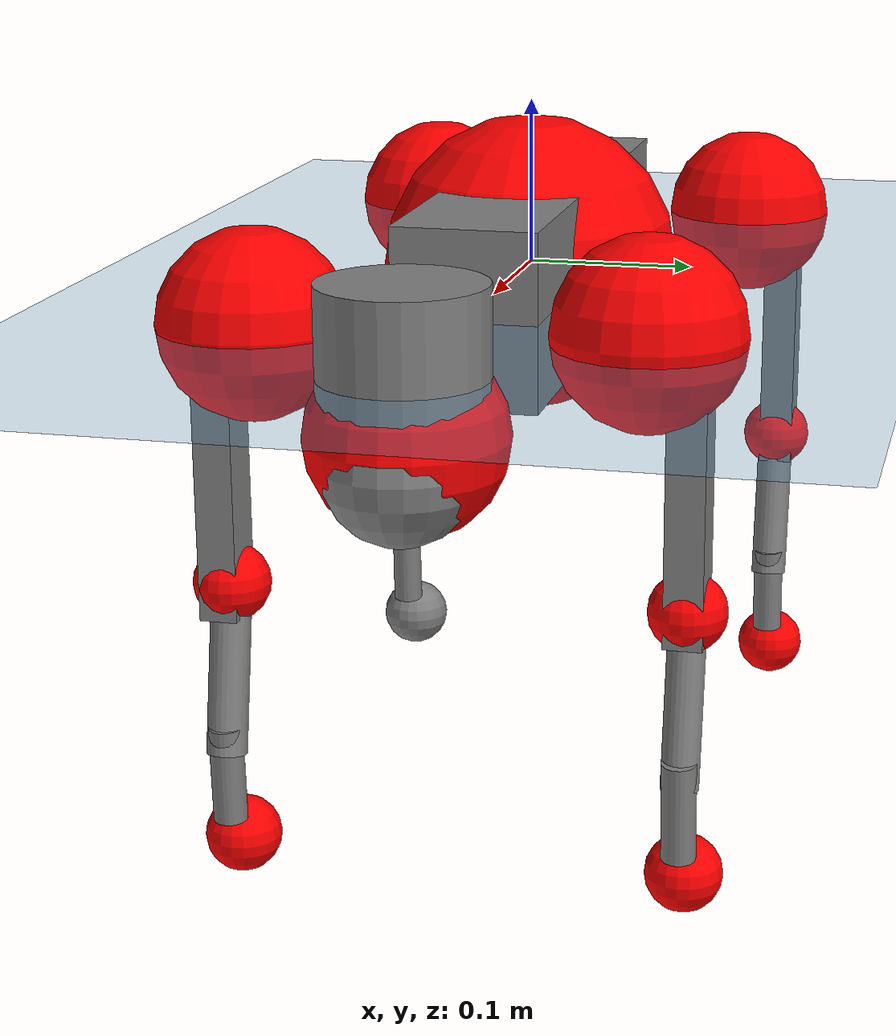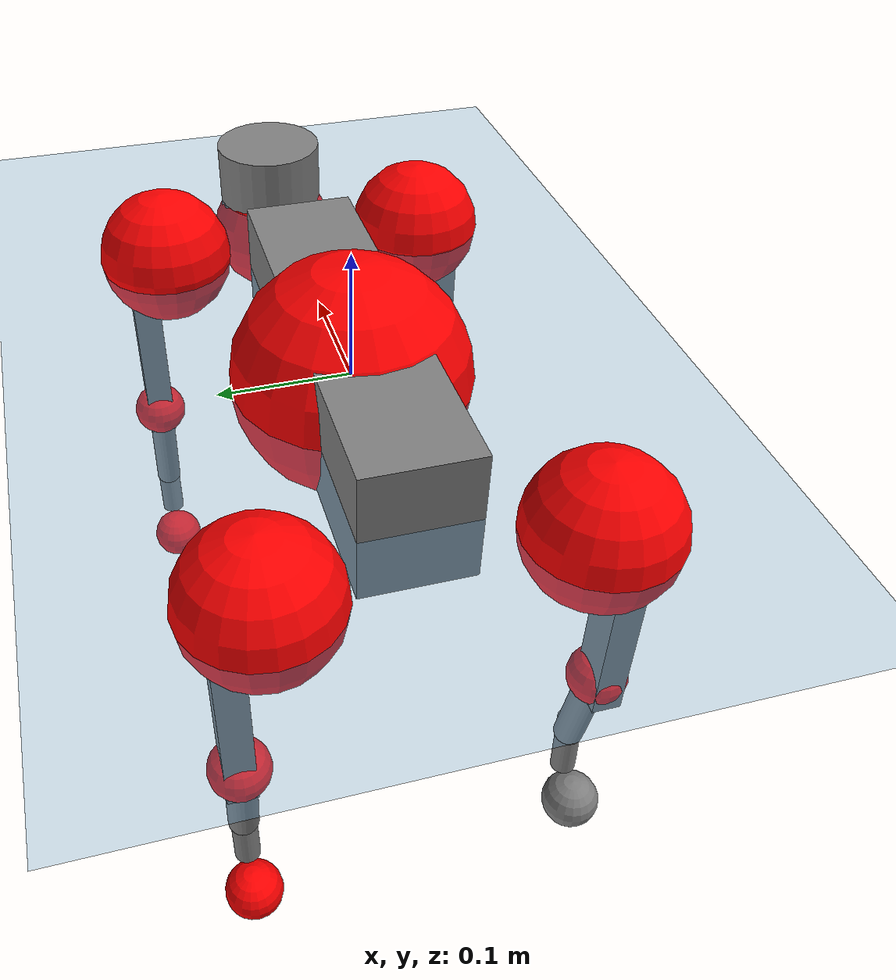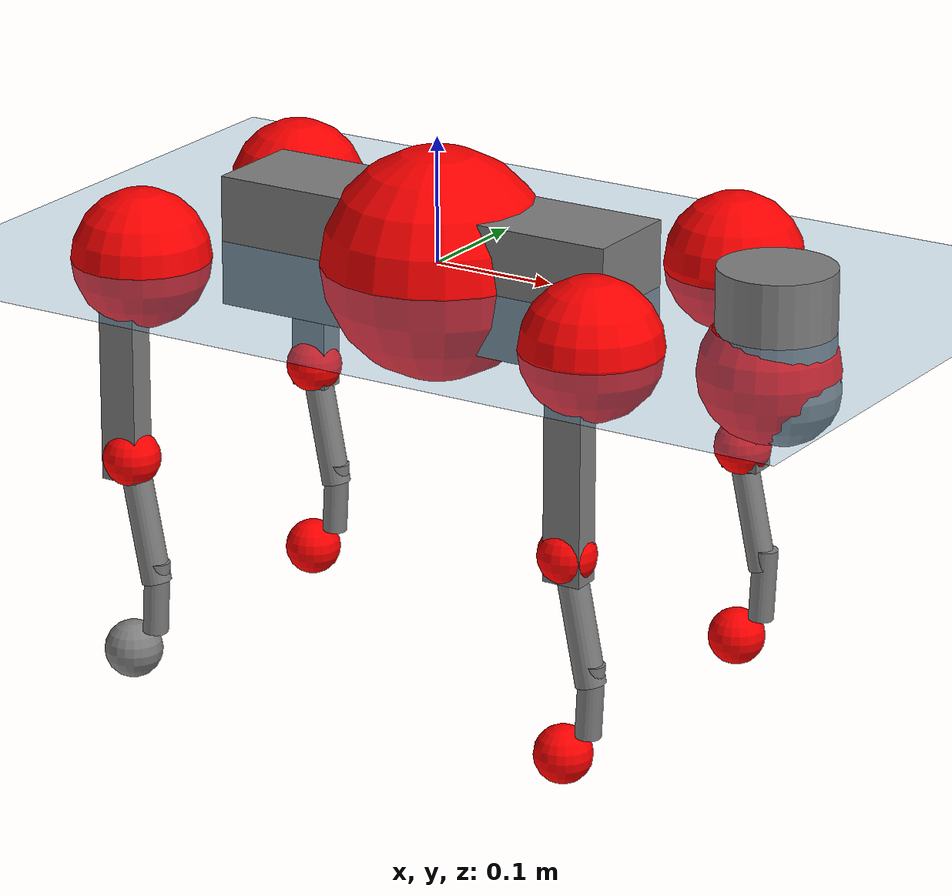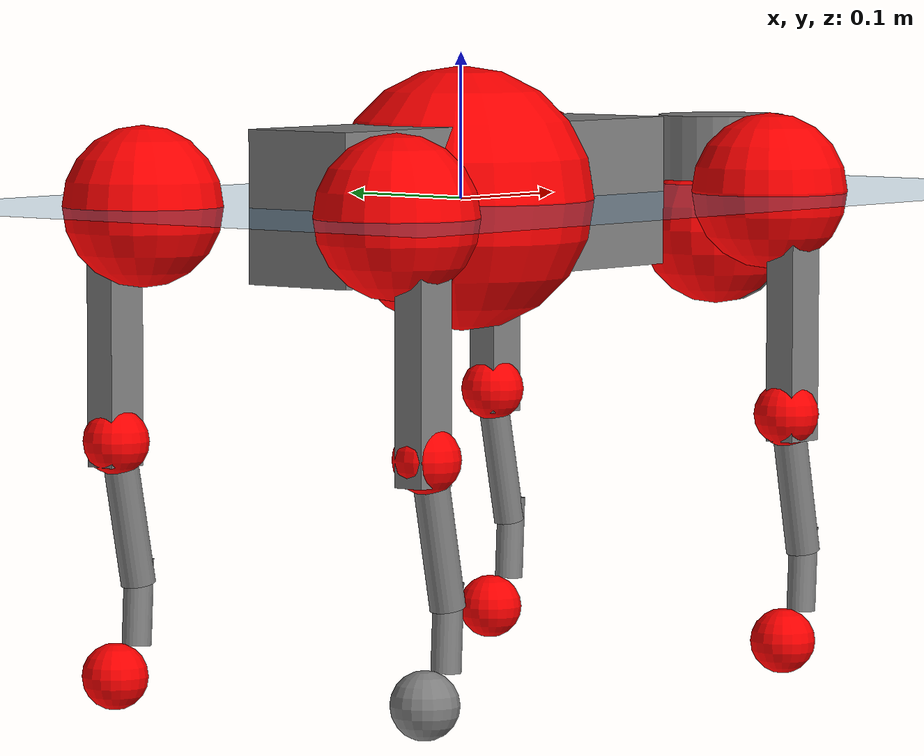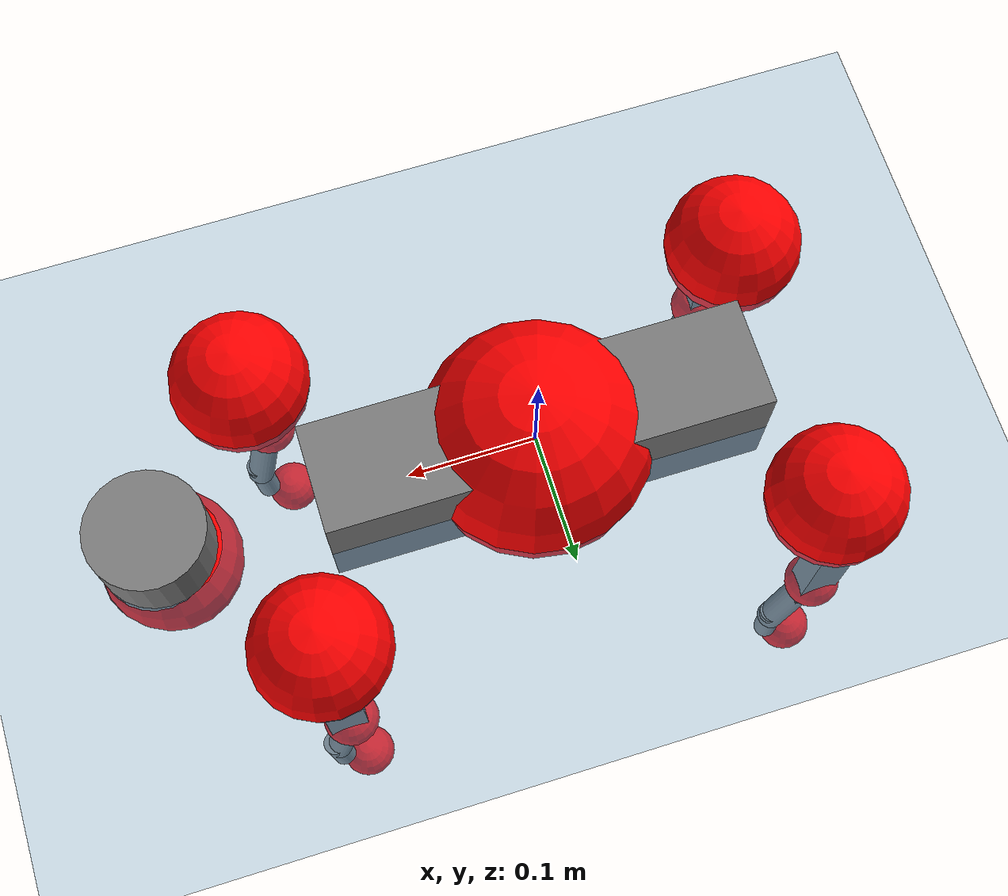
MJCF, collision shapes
<mujoco model="go2">
  <compiler angle="radian" assetdir="assets" balanceinertia="true" inertiafromgeom="false"/>

  <option timestep="0.005" density="1.2" viscosity="2e-05"/>

  <size nkey="1"/>

  <visual>
    <quality shadowsize="8192"/>
    <map shadowclip="0.5"/>
  </visual>

  <default>
    <default class="/">
      <geom contype="0" conaffinity="0" group="1" solref="-1000 -80"/>
      <site size="0.01 0.005 0.005" group="5"/>
      <general forcelimited="true" biastype="affine" gainprm="20" biasprm="0 -20 -0.5"/>
      <default class="go2">
        <joint armature="0.01" damping="0.01" frictionloss="0.2"/>
        <geom condim="1" margin="0.001"/>
        <default class="visual">
          <geom type="mesh" group="2"/>
        </default>
        <default class="collision">
          <geom group="3"/>
          <default class="foot">
            <geom size="0.022 0 0" condim="6" priority="1" friction="0.8 0.02 0.01" solimp="0.015 1 0.022"/>
          </default>
        </default>
        <default class="reward_collision_sphere">
          <geom group="5" rgba="1 0 0 1"/>
        </default>
      </default>
    </default>
  </default>

  <asset>
    <texture type="skybox" colorspace="auto" name="//unnamed_texture_0" builtin="gradient" rgb1="0.95 0.95 0.95" rgb2="0.95 0.95 0.95" width="100" height="600"/>
    <texture type="2d" colorspace="auto" name="texplane" builtin="checker" rgb1="0.345 0.575 0.748" rgb2="0.345 0.575 0.748" markrgb="1 1 1" width="512" height="512"/>
    <material name="MatPlane" class="/" texture="texplane" texuniform="true" texrepeat="2 2" specular="0.9"/>
    <material name="metal" class="/" rgba="0.9 0.95 0.95 1"/>
    <material name="black" class="/" rgba="0 0 0 1"/>
    <material name="white" class="/"/>
    <material name="gray" class="/" rgba="0.671705 0.692426 0.77427 1"/>
    <mesh name="base_0" class="/" file="base_0.obj"/>
    <mesh name="base_1" class="/" file="base_1.obj"/>
    <mesh name="base_2" class="/" file="base_2.obj"/>
    <mesh name="base_3" class="/" file="base_3.obj"/>
    <mesh name="base_4" class="/" file="base_4.obj"/>
    <mesh name="hip_0" class="/" file="hip_0.obj"/>
    <mesh name="hip_1" class="/" file="hip_1.obj"/>
    <mesh name="thigh_0" class="/" file="thigh_0.obj"/>
    <mesh name="thigh_1" class="/" file="thigh_1.obj"/>
    <mesh name="thigh_mirror_0" class="/" file="thigh_mirror_0.obj"/>
    <mesh name="thigh_mirror_1" class="/" file="thigh_mirror_1.obj"/>
    <mesh name="calf_0" class="/" file="calf_0.obj"/>
    <mesh name="calf_1" class="/" file="calf_1.obj"/>
    <mesh name="calf_mirror_0" class="/" file="calf_mirror_0.obj"/>
    <mesh name="calf_mirror_1" class="/" file="calf_mirror_1.obj"/>
    <mesh name="foot" class="/" file="foot.obj"/>
  </asset>

  <worldbody>
    <geom name="floor" class="/" size="100 100 0.125" type="plane" group="0" material="MatPlane"/>
    <light name="toplight_shadow" class="/" pos="0 0 5" dir="0.0990148 0.0990148 -0.990148" type="directional" ambient="0.04 0.04 0.04" diffuse="0.55 0.55 0.55" specular="0.12 0.12 0.12"/>
    <light name="toplight_fill" class="/" pos="0 0 5" dir="0.0990148 0.0990148 -0.990148" type="directional" castshadow="false" ambient="0.04 0.04 0.04" diffuse="0.3 0.3 0.3" specular="0.08 0.08 0.08"/>
    <body name="trunk" childclass="go2" pos="0.000331895 -0.000239554 -4.66923e-05" quat="1 -5.58919e-05 -9.25882e-05 2.25158e-05">
      <inertial pos="0.0225251 -0.00314268 -0.00480492" quat="-0.00114209 0.714218 -0.00160124 0.69992" mass="5.22577" diaginertia="0.119433 0.0733294 0.00564518"/>
      <joint name="//unnamed_joint_0" type="free" armature="0" damping="0" frictionloss="0"/>
      <geom name="//unnamed_geom_1" class="visual" material="black" mesh="base_0"/>
      <geom name="//unnamed_geom_2" class="visual" material="black" mesh="base_1"/>
      <geom name="//unnamed_geom_3" class="visual" material="black" mesh="base_2"/>
      <geom name="//unnamed_geom_4" class="visual" material="white" mesh="base_3"/>
      <geom name="//unnamed_geom_5" class="visual" material="gray" mesh="base_4"/>
      <geom name="trunk_1" class="collision" size="0.170964 0.042491 0.0518072" type="box"/>
      <geom name="trunk_2" class="collision" size="0.0454449 0.0409005" pos="0.294054 0 0.00749359" type="cylinder"/>
      <geom name="trunk_3" class="collision" size="0.0427183" pos="0.302308 0 -0.0449615"/>
      <geom name="//unnamed_geom_9" class="reward_collision_sphere" size="0.0908899"/>
      <geom name="//unnamed_geom_10" class="reward_collision_sphere" size="0.0545339" pos="0.288895 0 -0.0337211"/>
      <site name="imu" pos="-0.0139224 -0.00708644 0.0437127" size="0.00908899"/>
      <camera name="track" pos="0 -1.89114 0" quat="0.707107 0.707107 0 0" mode="trackcom"/>
      <camera name="ego_camera" pos="0.321912 0 0.0337211" quat="-0.5 -0.5 0.5 0.5"/>
      <body name="FL_hip" pos="0.197766 0.0432897 0.0054095" quat="0.999999 -0.000294238 -0.00102885 0.000137577">
        <inertial pos="-0.00382665 0.00209457 -0.00173731" quat="0.496515 0.502546 0.510172 0.490556" mass="0.476763" diaginertia="0.00099933 0.000427547 0.000111477"/>
        <joint name="FL_hip_joint" pos="0 0 0" axis="0.999989 -0.00312373 0.00350129" stiffness="0.0035954" range="-1.09175 1.05582" armature="0.00953712" damping="0.0140212" frictionloss="0.193683"/>
        <geom name="//unnamed_geom_11" class="visual" material="metal" mesh="hip_0"/>
        <geom name="//unnamed_geom_12" class="visual" material="gray" mesh="hip_1"/>
        <geom name="//unnamed_geom_13" class="collision" size="0.0418094 0.018178" pos="0 0.0756456 0" quat="0.707107 0.707107 0 0" type="cylinder"/>
        <geom name="//unnamed_geom_14" class="reward_collision_sphere" size="0.0545339" pos="0 0.0661899 0"/>
        <body name="FL_thigh" pos="2.5383e-05 0.089545 0.00250357" quat="1 0.00044392 7.86549e-05 -6.205e-05">
          <inertial pos="-0.00345017 -0.020396 -0.0259547" quat="0.829678 0.0848497 -0.0202833 0.551384" mass="0.915832" diaginertia="0.00688319 0.00449083 0.000223027"/>
          <joint name="FL_thigh_joint" pos="0 0 0" axis="0.00489002 0.999964 -0.00691295" range="-1.5844 3.53491" armature="0.0101402" damping="0.00298094" frictionloss="0.19298"/>
          <geom name="//unnamed_geom_15" class="visual" material="metal" mesh="thigh_0"/>
          <geom name="//unnamed_geom_16" class="visual" material="gray" mesh="thigh_1"/>
          <geom name="//unnamed_geom_17" class="collision" size="0.0967977 0.011134 0.0154513" pos="0 0 -0.0798067" quat="0.707107 0 0.707107 0" type="box"/>
          <body name="FL_calf" pos="-0.00268062 0.000104869 -0.160053" quat="0.999999 0.000734568 0.00112237 0.000283007">
            <inertial pos="0.00595459 -0.000602339 -0.104796" quat="0.710368 0.00163109 -0.00621889 0.703802" mass="0.176349" diaginertia="0.00173766 0.00113737 1.27142e-05"/>
            <joint name="FL_calf_joint" pos="0 0 0" axis="0.00230091 0.999996 0.00150153" stiffness="0.00563662" range="-2.69568 -0.878769" armature="0.00819055" damping="0" frictionloss="0.181603"/>
            <geom name="//unnamed_geom_18" class="visual" material="gray" mesh="calf_0"/>
            <geom name="//unnamed_geom_19" class="visual" material="black" mesh="calf_1"/>
            <geom name="FL_calf0" class="collision" size="0.0109068 0.0545339" pos="0.00825414 0 -0.0449615" quat="0.994493 0 -0.104807 0" type="cylinder"/>
            <geom name="//unnamed_geom_21" class="collision" size="0.00999789 0.0295392" pos="0.0206354 0 -0.110905" quat="0.999688 0 0.0249974 0" type="cylinder"/>
            <geom name="//unnamed_geom_22" class="visual" pos="0 0 -0.159613" quat="1 0 0 0" material="black" mesh="foot"/>
            <geom name="FL_foot" class="foot" size="0.016947" pos="-0.00206354 0 -0.159613"/>
            <geom name="//unnamed_geom_24" class="reward_collision_sphere" size="0.0227225"/>
            <geom name="//unnamed_geom_25" class="reward_collision_sphere" size="0.0227225" pos="-0.00206354 0 -0.159613"/>
            <site name="FL_foot" class="foot" pos="-0.00206354 0 -0.159613" size="0.00908899"/>
          </body>
        </body>
      </body>
      <body name="FR_hip" pos="0.202816 -0.0455168 0.000677128" quat="1 1.62403e-05 -0.000100045 0.000389012">
        <inertial pos="-0.00537527 -0.000700555 -0.00268722" quat="0.498301 0.508358 0.499338 0.493891" mass="0.539805" diaginertia="0.00105225 0.000452529 0.000113174"/>
        <joint name="FR_hip_joint" pos="0 0 0" axis="0.999998 -0.00208286 0.000255391" stiffness="0.00757451" range="-1.06221 1.1007" armature="0.00935915" damping="0.0220338" frictionloss="0.175293"/>
        <geom name="//unnamed_geom_26" class="visual" pos="0 1.70931e-09 7.33159e-08" quat="4.63268e-05 1 0 0" material="metal" mesh="hip_0"/>
        <geom name="//unnamed_geom_27" class="visual" pos="0 2.771e-09 -1.81338e-07" quat="4.63268e-05 1 0 0" material="gray" mesh="hip_1"/>
        <geom name="//unnamed_geom_28" class="collision" size="0.0418094 0.018178" pos="0 -0.0756456 0" quat="0.707107 0.707107 0 0" type="cylinder"/>
        <geom name="//unnamed_geom_29" class="reward_collision_sphere" size="0.0545339" pos="0 -0.0661899 0"/>
        <body name="FR_thigh" pos="-0.00373574 -0.0896959 0.00241866" quat="0.999999 0.000577601 0.00108285 0.000505418">
          <inertial pos="-0.00342391 0.0192006 -0.0243415" quat="0.549826 -0.020733 0.0816183 0.831024" mass="0.802285" diaginertia="0.0068154 0.00407619 0.000202702"/>
          <joint name="FR_thigh_joint" pos="0 0 0" axis="0.00787947 -0.999821 -0.0171954" stiffness="0.00514844" range="-3.57713 1.62316" armature="0.00883318" damping="0.0106339" frictionloss="0.159223"/>
          <geom name="//unnamed_geom_30" class="visual" material="metal" mesh="thigh_mirror_0"/>
          <geom name="//unnamed_geom_31" class="visual" material="gray" mesh="thigh_mirror_1"/>
          <geom name="//unnamed_geom_32" class="collision" size="0.0967977 0.011134 0.0154513" pos="0 0 -0.0798067" quat="0.707107 0 0.707107 0" type="box"/>
          <body name="FR_calf" pos="-0.0028063 0.00280059 -0.157939" quat="0.999999 0.00107571 -0.000532126 7.62717e-05">
            <inertial pos="0.00429344 -0.00190455 -0.109689" quat="0.706167 -0.0168253 0.00133691 0.707844" mass="0.189953" diaginertia="0.00175027 0.00110129 1.25064e-05"/>
            <joint name="FR_calf_joint" pos="0 0 0" axis="-0.023662 -0.999666 0.0103654" range="0.88854 2.74699" armature="0.00905445" damping="0.0132486" frictionloss="0.221111"/>
            <geom name="//unnamed_geom_33" class="visual" material="gray" mesh="calf_mirror_0"/>
            <geom name="//unnamed_geom_34" class="visual" material="black" mesh="calf_mirror_1"/>
            <geom name="FR_calf0" class="collision" size="0.0118157 0.0545339" pos="0.0103177 0 -0.0449615" quat="0.995004 0 -0.0998334 0" type="cylinder"/>
            <geom name="//unnamed_geom_36" class="collision" size="0.00999789 0.0295392" pos="0.0206354 0 -0.110905" quat="0.999688 0 0.0249974 0" type="cylinder"/>
            <geom name="//unnamed_geom_37" class="visual" pos="0 0 -0.159613" quat="1 0 0 0" material="black" mesh="foot"/>
            <geom name="FR_foot" class="foot" size="0.0218142" pos="-0.00206354 0 -0.159613"/>
            <geom name="//unnamed_geom_39" class="reward_collision_sphere" size="0.0227225"/>
            <geom name="//unnamed_geom_40" class="reward_collision_sphere" size="0.0227225" pos="-0.00206354 0 -0.159613"/>
            <site name="FR_foot" class="foot" pos="-0.00206354 0 -0.159613" size="0.00908899"/>
          </body>
        </body>
      </body>
      <body name="RL_hip" pos="-0.2024 0.0434825 -0.00063085" quat="0.999999 -0.000305585 0.00134852 -0.00013524">
        <inertial pos="0.00377595 0.00341251 0.00244889" quat="0.507677 0.511427 0.501005 0.479271" mass="0.537214" diaginertia="0.00106403 0.000452926 0.000110255"/>
        <joint name="RL_hip_joint" pos="0 0 0" axis="-0.999997 -0.0023139 -0.000763132" stiffness="0.00463728" range="-0.996801 1.01126" armature="0.00908787" damping="0.00425537" frictionloss="0.196811"/>
        <geom name="//unnamed_geom_41" class="visual" pos="-2.46023e-09 0 -4.82262e-07" quat="4.63268e-05 0 1 0" material="metal" mesh="hip_0"/>
        <geom name="//unnamed_geom_42" class="visual" pos="-3.98833e-09 0 -4.27698e-07" quat="4.63268e-05 0 1 0" material="gray" mesh="hip_1"/>
        <geom name="//unnamed_geom_43" class="collision" size="0.0418094 0.018178" pos="0 0.0756456 0" quat="0.707107 0.707107 0 0" type="cylinder"/>
        <geom name="//unnamed_geom_44" class="reward_collision_sphere" size="0.0545339" pos="0 0.0661899 0"/>
        <body name="RL_thigh" pos="-0.000878323 0.0914129 0.000238686" quat="1 -0.000636795 0.000437833 0.000200307">
          <inertial pos="-0.00621166 -0.0211489 -0.0246855" quat="0.829147 0.0766613 -0.0284044 0.55302" mass="0.845683" diaginertia="0.00653021 0.0041904 0.000205046"/>
          <joint name="RL_thigh_joint" pos="0 0 0" axis="0.0177458 0.999842 0.000343601" stiffness="0.00653624" range="-0.534957 4.53245" armature="0.00910611" damping="0" frictionloss="0.184545"/>
          <geom name="//unnamed_geom_45" class="visual" material="metal" mesh="thigh_0"/>
          <geom name="//unnamed_geom_46" class="visual" material="gray" mesh="thigh_1"/>
          <geom name="//unnamed_geom_47" class="collision" size="0.0967977 0.011134 0.0154513" pos="0 0 -0.0798067" quat="0.707107 0 0.707107 0" type="box"/>
          <body name="RL_calf" pos="-0.000654231 -0.00130269 -0.159635" quat="1 0.000192002 -0.000298934 -0.000405364">
            <inertial pos="0.00587942 -0.00289625 -0.106223" quat="0.710492 0.00157738 -0.00469136 0.703688" mass="0.174413" diaginertia="0.00158359 0.00100729 1.10804e-05"/>
            <joint name="RL_calf_joint" pos="0 0 0" axis="0.000241308 1 8.36899e-05" stiffness="0.00175379" range="-2.72882 -0.738402" armature="0.00942073" damping="0.00282044" frictionloss="0.19855"/>
            <geom name="//unnamed_geom_48" class="visual" material="gray" mesh="calf_0"/>
            <geom name="//unnamed_geom_49" class="visual" material="black" mesh="calf_1"/>
            <geom name="RL_calf0" class="collision" size="0.0118157 0.0545339" pos="0.0103177 0 -0.0449615" quat="0.995004 0 -0.0998334 0" type="cylinder"/>
            <geom name="//unnamed_geom_51" class="collision" size="0.00999789 0.0295392" pos="0.0206354 0 -0.110905" quat="0.999688 0 0.0249974 0" type="cylinder"/>
            <geom name="//unnamed_geom_52" class="visual" pos="0 0 -0.159613" quat="1 0 0 0" material="black" mesh="foot"/>
            <geom name="RL_foot" class="foot" size="0.0217788" pos="-0.00206354 0 -0.159613"/>
            <geom name="//unnamed_geom_54" class="reward_collision_sphere" size="0.0227225"/>
            <geom name="//unnamed_geom_55" class="reward_collision_sphere" size="0.0227225" pos="-0.00206354 0 -0.159613"/>
            <site name="RL_foot" class="foot" pos="-0.00206354 0 -0.159613" size="0.00908899"/>
          </body>
        </body>
      </body>
      <body name="RR_hip" pos="-0.198869 -0.0441052 -6.13564e-05" quat="1 -0.00012158 0.000212253 0.000913854">
        <inertial pos="0.00795765 0.000190562 -0.00216486" quat="0.491955 0.514551 0.497225 0.495968" mass="0.489059" diaginertia="0.00103714 0.000437299 0.000112182"/>
        <joint name="RR_hip_joint" pos="0 0 0" axis="-0.999862 -0.014633 0.00784769" range="-1.01713 1.09818" armature="0.0100464" damping="0.0105923" frictionloss="0.189388"/>
        <geom name="//unnamed_geom_56" class="visual" pos="2.45725e-09 1.70931e-09 -5.55578e-07" quat="2.14617e-09 4.63268e-05 4.63268e-05 -1" material="metal" mesh="hip_0"/>
        <geom name="//unnamed_geom_57" class="visual" pos="3.99571e-09 2.771e-09 -2.46359e-07" quat="2.14617e-09 4.63268e-05 4.63268e-05 -1" material="gray" mesh="hip_1"/>
        <geom name="//unnamed_geom_58" class="collision" size="0.0418094 0.018178" pos="0 -0.0756456 0" quat="0.707107 0.707107 0 0" type="cylinder"/>
        <geom name="//unnamed_geom_59" class="reward_collision_sphere" size="0.0545339" pos="0 -0.0661899 0"/>
        <body name="RR_thigh" pos="-0.00110294 -0.0894748 0.00342818" quat="1 -0.000434451 0.000597267 -8.90197e-05">
          <inertial pos="-0.00335418 0.0165918 -0.0232187" quat="0.548932 -0.0207187 0.0831294 0.831465" mass="0.918465" diaginertia="0.00730455 0.00469189 0.000215977"/>
          <joint name="RR_thigh_joint" pos="0 0 0" axis="-0.00140098 -0.999996 0.00228131" range="-4.49292 0.577735" armature="0.00692638" damping="0.0145944" frictionloss="0.205083"/>
          <geom name="//unnamed_geom_60" class="visual" material="metal" mesh="thigh_mirror_0"/>
          <geom name="//unnamed_geom_61" class="visual" material="gray" mesh="thigh_mirror_1"/>
          <geom name="//unnamed_geom_62" class="collision" size="0.0967977 0.011134 0.0154513" pos="0 0 -0.0798067" quat="0.707107 0 0.707107 0" type="box"/>
          <body name="RR_calf" pos="0.00437514 0.000851493 -0.159396" quat="1 3.56511e-05 -6.2549e-06 -8.31619e-05">
            <inertial pos="0.00820944 0.00106404 -0.105089" quat="0.71532 -0.00530603 0.00355184 0.698768" mass="0.182524" diaginertia="0.00175379 0.00104762 1.15865e-05"/>
            <joint name="RR_calf_joint" pos="0 0 0" axis="0.0107025 -0.999929 -0.00520623" range="0.818875 2.68202" armature="0.00900042" damping="0.0100977" frictionloss="0.199243"/>
            <geom name="//unnamed_geom_63" class="visual" material="gray" mesh="calf_mirror_0"/>
            <geom name="//unnamed_geom_64" class="visual" material="black" mesh="calf_mirror_1"/>
            <geom name="RR_calf0" class="collision" size="0.0118157 0.0545339" pos="0.0103177 0 -0.0449615" quat="0.995004 0 -0.0998334 0" type="cylinder"/>
            <geom name="//unnamed_geom_66" class="collision" size="0.00999789 0.0295392" pos="0.0206354 0 -0.110905" quat="0.999688 0 0.0249974 0" type="cylinder"/>
            <geom name="//unnamed_geom_67" class="visual" pos="0 0 -0.159613" quat="1 0 0 0" material="black" mesh="foot"/>
            <geom name="RR_foot" class="foot" size="0.0230048" pos="-0.00206354 0 -0.159613"/>
            <geom name="//unnamed_geom_69" class="reward_collision_sphere" size="0.0227225"/>
            <geom name="//unnamed_geom_70" class="reward_collision_sphere" size="0.0227225" pos="-0.00206354 0 -0.159613"/>
            <site name="RR_foot" class="foot" pos="-0.00206354 0 -0.159613" size="0.00908899"/>
          </body>
        </body>
      </body>
    </body>
  </worldbody>

  <contact>
    <pair class="/" geom1="floor" geom2="FL_foot" name="//unnamed_contact_0"/>
    <pair class="/" geom1="floor" geom2="FR_foot" name="//unnamed_contact_1"/>
    <pair class="/" geom1="floor" geom2="RL_foot" name="//unnamed_contact_2"/>
    <pair class="/" geom1="floor" geom2="RR_foot" name="//unnamed_contact_3"/>
  </contact>

  <actuator>
    <general name="FL_hip" class="/" joint="FL_hip_joint" forcerange="-20.4841 20.4841" gainprm="16.8892" biasprm="0 -16.8892 -0.480709"/>
    <general name="FL_thigh" class="/" joint="FL_thigh_joint" forcerange="-24.9803 24.9803" gainprm="16.8892" biasprm="0 -16.8892 -0.480709"/>
    <general name="FL_calf" class="/" joint="FL_calf_joint" forcerange="-45.1928 45.1928" gainprm="16.8892" biasprm="0 -16.8892 -0.480709"/>
    <general name="FR_hip" class="/" joint="FR_hip_joint" forcerange="-19.4927 19.4927" gainprm="16.8892" biasprm="0 -16.8892 -0.480709"/>
    <general name="FR_thigh" class="/" joint="FR_thigh_joint" forcerange="-23.5335 23.5335" gainprm="16.8892" biasprm="0 -16.8892 -0.480709"/>
    <general name="FR_calf" class="/" joint="FR_calf_joint" forcerange="-37.9643 37.9643" gainprm="16.8892" biasprm="0 -16.8892 -0.480709"/>
    <general name="RL_hip" class="/" joint="RL_hip_joint" forcerange="-21.9135 21.9135" gainprm="16.8892" biasprm="0 -16.8892 -0.480709"/>
    <general name="RL_thigh" class="/" joint="RL_thigh_joint" forcerange="-21.547 21.547" gainprm="16.8892" biasprm="0 -16.8892 -0.480709"/>
    <general name="RL_calf" class="/" joint="RL_calf_joint" forcerange="-38.7444 38.7444" gainprm="16.8892" biasprm="0 -16.8892 -0.480709"/>
    <general name="RR_hip" class="/" joint="RR_hip_joint" forcerange="-24.792 24.792" gainprm="16.8892" biasprm="0 -16.8892 -0.480709"/>
    <general name="RR_thigh" class="/" joint="RR_thigh_joint" forcerange="-19.7728 19.7728" gainprm="16.8892" biasprm="0 -16.8892 -0.480709"/>
    <general name="RR_calf" class="/" joint="RR_calf_joint" forcerange="-38.1919 38.1919" gainprm="16.8892" biasprm="0 -16.8892 -0.480709"/>
  </actuator>

  <sensor>
    <gyro site="imu" name="imu_angular_velocity"/>
    <velocimeter site="imu" name="imu_linear_velocity"/>
    <framelinvel objtype="site" objname="FL_foot" name="FL_foot_global_linear_velocity"/>
    <framelinvel objtype="site" objname="FR_foot" name="FR_foot_global_linear_velocity"/>
    <framelinvel objtype="site" objname="RL_foot" name="RL_foot_global_linear_velocity"/>
    <framelinvel objtype="site" objname="RR_foot" name="RR_foot_global_linear_velocity"/>
  </sensor>

  <keyframe>
    <key name="home" qpos="0 0 0.325 1 0 0 0 0.1 0.8 -1.5 -0.1 -0.8 1.5 -0.1 0.8 -1.5 0.1 -0.8 1.5"/>
  </keyframe>
</mujoco>
